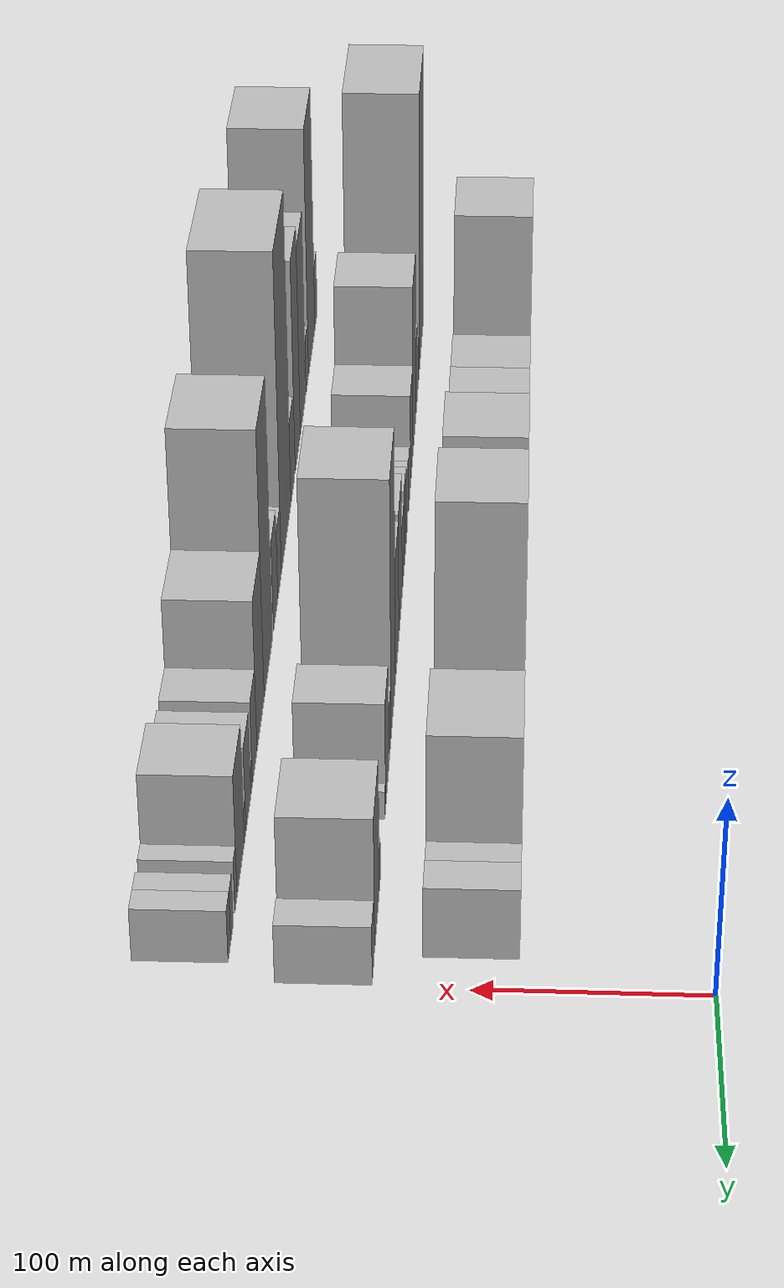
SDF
<sdf version="1.6">
 <world name="default">
  <model name="building_1">
   <static>1</static>
   <pose>100.0000 -554.4719 0 0.000000 0.000000 0.000000</pose>
   <link name="link">
    <pose>0 0 28.50 0 0 0</pose>
    <collision name="collision"><geometry><box><size>40.0000 31.0561 57.0000</size></box></geometry></collision>
    <visual name="visual">
     <cast_shadows>0</cast_shadows>
     <geometry><box><size>40.0000 31.0561 57.0000</size></box></geometry>
     <material>
      <script>
       <uri>model://HANNAS_wall/materials/scripts</uri>
       <uri>model://HANNAS_wall/materials/textures</uri>
       <name>vrc/HANNAS_wall</name>
      </script>
     </material>
    </visual>
   </link>
  </model>
  <model name="building_2">
   <static>1</static>
   <pose>100.0000 -521.5871 0 0.000000 0.000000 0.000000</pose>
   <link name="link">
    <pose>0 0 34.50 0 0 0</pose>
    <collision name="collision"><geometry><box><size>40.0000 34.7136 69.0000</size></box></geometry></collision>
    <visual name="visual">
     <cast_shadows>0</cast_shadows>
     <geometry><box><size>40.0000 34.7136 69.0000</size></box></geometry>
     <material>
      <script>
       <uri>model://HANNAS_wall/materials/scripts</uri>
       <uri>model://HANNAS_wall/materials/textures</uri>
       <name>vrc/HANNAS_wall</name>
      </script>
     </material>
    </visual>
   </link>
  </model>
  <model name="building_3">
   <static>1</static>
   <pose>100.0000 -481.3162 0 0.000000 0.000000 0.000000</pose>
   <link name="link">
    <pose>0 0 61.50 0 0 0</pose>
    <collision name="collision"><geometry><box><size>40.0000 45.8280 123.0000</size></box></geometry></collision>
    <visual name="visual">
     <cast_shadows>0</cast_shadows>
     <geometry><box><size>40.0000 45.8280 123.0000</size></box></geometry>
     <material>
      <script>
       <uri>model://HANNAS_wall/materials/scripts</uri>
       <uri>model://HANNAS_wall/materials/textures</uri>
       <name>vrc/HANNAS_wall</name>
      </script>
     </material>
    </visual>
   </link>
  </model>
  <model name="building_4">
   <static>1</static>
   <pose>100.0000 -452.7569 0 0.000000 0.000000 0.000000</pose>
   <link name="link">
    <pose>0 0 12.00 0 0 0</pose>
    <collision name="collision"><geometry><box><size>40.0000 11.2907 24.0000</size></box></geometry></collision>
    <visual name="visual">
     <cast_shadows>0</cast_shadows>
     <geometry><box><size>40.0000 11.2907 24.0000</size></box></geometry>
     <material>
      <script>
       <uri>model://HANNAS_wall/materials/scripts</uri>
       <uri>model://HANNAS_wall/materials/textures</uri>
       <name>vrc/HANNAS_wall</name>
      </script>
     </material>
    </visual>
   </link>
  </model>
  <model name="building_5">
   <static>1</static>
   <pose>100.0000 -417.3665 0 0.000000 0.000000 0.000000</pose>
   <link name="link">
    <pose>0 0 33.00 0 0 0</pose>
    <collision name="collision"><geometry><box><size>40.0000 39.4901 66.0000</size></box></geometry></collision>
    <visual name="visual">
     <cast_shadows>0</cast_shadows>
     <geometry><box><size>40.0000 39.4901 66.0000</size></box></geometry>
     <material>
      <script>
       <uri>model://HANNAS_wall/materials/scripts</uri>
       <uri>model://HANNAS_wall/materials/textures</uri>
       <name>vrc/HANNAS_wall</name>
      </script>
     </material>
    </visual>
   </link>
  </model>
  <model name="building_6">
   <static>1</static>
   <pose>100.0000 -376.9387 0 0.000000 0.000000 0.000000</pose>
   <link name="link">
    <pose>0 0 34.50 0 0 0</pose>
    <collision name="collision"><geometry><box><size>40.0000 41.3656 69.0000</size></box></geometry></collision>
    <visual name="visual">
     <cast_shadows>0</cast_shadows>
     <geometry><box><size>40.0000 41.3656 69.0000</size></box></geometry>
     <material>
      <script>
       <uri>model://HANNAS_wall/materials/scripts</uri>
       <uri>model://HANNAS_wall/materials/textures</uri>
       <name>vrc/HANNAS_wall</name>
      </script>
     </material>
    </visual>
   </link>
  </model>
  <model name="building_7">
   <static>1</static>
   <pose>100.0000 -328.8341 0 0.000000 0.000000 0.000000</pose>
   <link name="link">
    <pose>0 0 34.50 0 0 0</pose>
    <collision name="collision"><geometry><box><size>40.0000 40.8436 69.0000</size></box></geometry></collision>
    <visual name="visual">
     <cast_shadows>0</cast_shadows>
     <geometry><box><size>40.0000 40.8436 69.0000</size></box></geometry>
     <material>
      <script>
       <uri>model://HANNAS_wall/materials/scripts</uri>
       <uri>model://HANNAS_wall/materials/textures</uri>
       <name>vrc/HANNAS_wall</name>
      </script>
     </material>
    </visual>
   </link>
  </model>
  <model name="building_8">
   <static>1</static>
   <pose>100.0000 -287.5396 0 0.000000 0.000000 0.000000</pose>
   <link name="link">
    <pose>0 0 52.50 0 0 0</pose>
    <collision name="collision"><geometry><box><size>40.0000 41.7453 105.0000</size></box></geometry></collision>
    <visual name="visual">
     <cast_shadows>0</cast_shadows>
     <geometry><box><size>40.0000 41.7453 105.0000</size></box></geometry>
     <material>
      <script>
       <uri>model://HANNAS_wall/materials/scripts</uri>
       <uri>model://HANNAS_wall/materials/textures</uri>
       <name>vrc/HANNAS_wall</name>
      </script>
     </material>
    </visual>
   </link>
  </model>
  <model name="building_9">
   <static>1</static>
   <pose>100.0000 -248.6137 0 0.000000 0.000000 0.000000</pose>
   <link name="link">
    <pose>0 0 33.00 0 0 0</pose>
    <collision name="collision"><geometry><box><size>40.0000 36.1065 66.0000</size></box></geometry></collision>
    <visual name="visual">
     <cast_shadows>0</cast_shadows>
     <geometry><box><size>40.0000 36.1065 66.0000</size></box></geometry>
     <material>
      <script>
       <uri>model://HANNAS_wall/materials/scripts</uri>
       <uri>model://HANNAS_wall/materials/textures</uri>
       <name>vrc/HANNAS_wall</name>
      </script>
     </material>
    </visual>
   </link>
  </model>
  <model name="building_10">
   <static>1</static>
   <pose>100.0000 -215.2584 0 0.000000 0.000000 0.000000</pose>
   <link name="link">
    <pose>0 0 18.00 0 0 0</pose>
    <collision name="collision"><geometry><box><size>40.0000 18.6041 36.0000</size></box></geometry></collision>
    <visual name="visual">
     <cast_shadows>0</cast_shadows>
     <geometry><box><size>40.0000 18.6041 36.0000</size></box></geometry>
     <material>
      <script>
       <uri>model://HANNAS_wall/materials/scripts</uri>
       <uri>model://HANNAS_wall/materials/textures</uri>
       <name>vrc/HANNAS_wall</name>
      </script>
     </material>
    </visual>
   </link>
  </model>
  <model name="building_11">
   <static>1</static>
   <pose>100.0000 -183.0226 0 0.000000 0.000000 0.000000</pose>
   <link name="link">
    <pose>0 0 67.50 0 0 0</pose>
    <collision name="collision"><geometry><box><size>40.0000 45.8675 135.0000</size></box></geometry></collision>
    <visual name="visual">
     <cast_shadows>0</cast_shadows>
     <geometry><box><size>40.0000 45.8675 135.0000</size></box></geometry>
     <material>
      <script>
       <uri>model://HANNAS_wall/materials/scripts</uri>
       <uri>model://HANNAS_wall/materials/textures</uri>
       <name>vrc/HANNAS_wall</name>
      </script>
     </material>
    </visual>
   </link>
  </model>
  <model name="building_12">
   <static>1</static>
   <pose>100.0000 -145.7582 0 0.000000 0.000000 0.000000</pose>
   <link name="link">
    <pose>0 0 9.00 0 0 0</pose>
    <collision name="collision"><geometry><box><size>40.0000 8.6613 18.0000</size></box></geometry></collision>
    <visual name="visual">
     <cast_shadows>0</cast_shadows>
     <geometry><box><size>40.0000 8.6613 18.0000</size></box></geometry>
     <material>
      <script>
       <uri>model://HANNAS_wall/materials/scripts</uri>
       <uri>model://HANNAS_wall/materials/textures</uri>
       <name>vrc/HANNAS_wall</name>
      </script>
     </material>
    </visual>
   </link>
  </model>
  <model name="building_13">
   <static>1</static>
   <pose>100.0000 -133.9505 0 0.000000 0.000000 0.000000</pose>
   <link name="link">
    <pose>0 0 9.00 0 0 0</pose>
    <collision name="collision"><geometry><box><size>40.0000 8.9541 18.0000</size></box></geometry></collision>
    <visual name="visual">
     <cast_shadows>0</cast_shadows>
     <geometry><box><size>40.0000 8.9541 18.0000</size></box></geometry>
     <material>
      <script>
       <uri>model://HANNAS_wall/materials/scripts</uri>
       <uri>model://HANNAS_wall/materials/textures</uri>
       <name>vrc/HANNAS_wall</name>
      </script>
     </material>
    </visual>
   </link>
  </model>
  <model name="building_14">
   <static>1</static>
   <pose>100.0000 -112.2183 0 0.000000 0.000000 0.000000</pose>
   <link name="link">
    <pose>0 0 15.00 0 0 0</pose>
    <collision name="collision"><geometry><box><size>40.0000 16.5102 30.0000</size></box></geometry></collision>
    <visual name="visual">
     <cast_shadows>0</cast_shadows>
     <geometry><box><size>40.0000 16.5102 30.0000</size></box></geometry>
     <material>
      <script>
       <uri>model://HANNAS_wall/materials/scripts</uri>
       <uri>model://HANNAS_wall/materials/textures</uri>
       <name>vrc/HANNAS_wall</name>
      </script>
     </material>
    </visual>
   </link>
  </model>
  <model name="building_15">
   <static>1</static>
   <pose>100.0000 -79.7045 0 0.000000 0.000000 0.000000</pose>
   <link name="link">
    <pose>0 0 43.50 0 0 0</pose>
    <collision name="collision"><geometry><box><size>40.0000 48.5175 87.0000</size></box></geometry></collision>
    <visual name="visual">
     <cast_shadows>0</cast_shadows>
     <geometry><box><size>40.0000 48.5175 87.0000</size></box></geometry>
     <material>
      <script>
       <uri>model://HANNAS_wall/materials/scripts</uri>
       <uri>model://HANNAS_wall/materials/textures</uri>
       <name>vrc/HANNAS_wall</name>
      </script>
     </material>
    </visual>
   </link>
  </model>
  <model name="building_16">
   <static>1</static>
   <pose>100.0000 -47.1491 0 0.000000 0.000000 0.000000</pose>
   <link name="link">
    <pose>0 0 16.50 0 0 0</pose>
    <collision name="collision"><geometry><box><size>40.0000 16.5933 33.0000</size></box></geometry></collision>
    <visual name="visual">
     <cast_shadows>0</cast_shadows>
     <geometry><box><size>40.0000 16.5933 33.0000</size></box></geometry>
     <material>
      <script>
       <uri>model://HANNAS_wall/materials/scripts</uri>
       <uri>model://HANNAS_wall/materials/textures</uri>
       <name>vrc/HANNAS_wall</name>
      </script>
     </material>
    </visual>
   </link>
  </model>
  <model name="building_17">
   <static>1</static>
   <pose>100.0000 -29.5650 0 0.000000 0.000000 0.000000</pose>
   <link name="link">
    <pose>0 0 18.00 0 0 0</pose>
    <collision name="collision"><geometry><box><size>40.0000 18.5749 36.0000</size></box></geometry></collision>
    <visual name="visual">
     <cast_shadows>0</cast_shadows>
     <geometry><box><size>40.0000 18.5749 36.0000</size></box></geometry>
     <material>
      <script>
       <uri>model://HANNAS_wall/materials/scripts</uri>
       <uri>model://HANNAS_wall/materials/textures</uri>
       <name>vrc/HANNAS_wall</name>
      </script>
     </material>
    </visual>
   </link>
  </model>
  <model name="building_35">
   <static>1</static>
   <pose>160.0000 -545.3667 0 0.000000 0.000000 0.000000</pose>
   <link name="link">
    <pose>0 0 82.50 0 0 0</pose>
    <collision name="collision"><geometry><box><size>40.0000 63.2666 165.0000</size></box></geometry></collision>
    <visual name="visual">
     <cast_shadows>0</cast_shadows>
     <geometry><box><size>40.0000 63.2666 165.0000</size></box></geometry>
     <material>
      <script>
       <uri>model://HANNAS_wall/materials/scripts</uri>
       <uri>model://HANNAS_wall/materials/textures</uri>
       <name>vrc/HANNAS_wall</name>
      </script>
     </material>
    </visual>
   </link>
  </model>
  <model name="building_36">
   <static>1</static>
   <pose>160.0000 -501.1986 0 0.000000 0.000000 0.000000</pose>
   <link name="link">
    <pose>0 0 13.50 0 0 0</pose>
    <collision name="collision"><geometry><box><size>40.0000 11.0695 27.0000</size></box></geometry></collision>
    <visual name="visual">
     <cast_shadows>0</cast_shadows>
     <geometry><box><size>40.0000 11.0695 27.0000</size></box></geometry>
     <material>
      <script>
       <uri>model://HANNAS_wall/materials/scripts</uri>
       <uri>model://HANNAS_wall/materials/textures</uri>
       <name>vrc/HANNAS_wall</name>
      </script>
     </material>
    </visual>
   </link>
  </model>
  <model name="building_37">
   <static>1</static>
   <pose>160.0000 -474.6962 0 0.000000 0.000000 0.000000</pose>
   <link name="link">
    <pose>0 0 22.50 0 0 0</pose>
    <collision name="collision"><geometry><box><size>40.0000 23.9354 45.0000</size></box></geometry></collision>
    <visual name="visual">
     <cast_shadows>0</cast_shadows>
     <geometry><box><size>40.0000 23.9354 45.0000</size></box></geometry>
     <material>
      <script>
       <uri>model://HANNAS_wall/materials/scripts</uri>
       <uri>model://HANNAS_wall/materials/textures</uri>
       <name>vrc/HANNAS_wall</name>
      </script>
     </material>
    </visual>
   </link>
  </model>
  <model name="building_38">
   <static>1</static>
   <pose>160.0000 -443.7547 0 0.000000 0.000000 0.000000</pose>
   <link name="link">
    <pose>0 0 49.50 0 0 0</pose>
    <collision name="collision"><geometry><box><size>40.0000 37.9476 99.0000</size></box></geometry></collision>
    <visual name="visual">
     <cast_shadows>0</cast_shadows>
     <geometry><box><size>40.0000 37.9476 99.0000</size></box></geometry>
     <material>
      <script>
       <uri>model://HANNAS_wall/materials/scripts</uri>
       <uri>model://HANNAS_wall/materials/textures</uri>
       <name>vrc/HANNAS_wall</name>
      </script>
     </material>
    </visual>
   </link>
  </model>
  <model name="building_39">
   <static>1</static>
   <pose>160.0000 -408.8667 0 0.000000 0.000000 0.000000</pose>
   <link name="link">
    <pose>0 0 27.00 0 0 0</pose>
    <collision name="collision"><geometry><box><size>40.0000 31.8284 54.0000</size></box></geometry></collision>
    <visual name="visual">
     <cast_shadows>0</cast_shadows>
     <geometry><box><size>40.0000 31.8284 54.0000</size></box></geometry>
     <material>
      <script>
       <uri>model://HANNAS_wall/materials/scripts</uri>
       <uri>model://HANNAS_wall/materials/textures</uri>
       <name>vrc/HANNAS_wall</name>
      </script>
     </material>
    </visual>
   </link>
  </model>
  <model name="building_40">
   <static>1</static>
   <pose>160.0000 -376.1975 0 0.000000 0.000000 0.000000</pose>
   <link name="link">
    <pose>0 0 15.00 0 0 0</pose>
    <collision name="collision"><geometry><box><size>40.0000 15.5101 30.0000</size></box></geometry></collision>
    <visual name="visual">
     <cast_shadows>0</cast_shadows>
     <geometry><box><size>40.0000 15.5101 30.0000</size></box></geometry>
     <material>
      <script>
       <uri>model://HANNAS_wall/materials/scripts</uri>
       <uri>model://HANNAS_wall/materials/textures</uri>
       <name>vrc/HANNAS_wall</name>
      </script>
     </material>
    </visual>
   </link>
  </model>
  <model name="building_41">
   <static>1</static>
   <pose>160.0000 -349.1722 0 0.000000 0.000000 0.000000</pose>
   <link name="link">
    <pose>0 0 18.00 0 0 0</pose>
    <collision name="collision"><geometry><box><size>40.0000 20.5405 36.0000</size></box></geometry></collision>
    <visual name="visual">
     <cast_shadows>0</cast_shadows>
     <geometry><box><size>40.0000 20.5405 36.0000</size></box></geometry>
     <material>
      <script>
       <uri>model://HANNAS_wall/materials/scripts</uri>
       <uri>model://HANNAS_wall/materials/textures</uri>
       <name>vrc/HANNAS_wall</name>
      </script>
     </material>
    </visual>
   </link>
  </model>
  <model name="building_42">
   <static>1</static>
   <pose>160.0000 -326.9622 0 0.000000 0.000000 0.000000</pose>
   <link name="link">
    <pose>0 0 22.50 0 0 0</pose>
    <collision name="collision"><geometry><box><size>40.0000 23.8795 45.0000</size></box></geometry></collision>
    <visual name="visual">
     <cast_shadows>0</cast_shadows>
     <geometry><box><size>40.0000 23.8795 45.0000</size></box></geometry>
     <material>
      <script>
       <uri>model://HANNAS_wall/materials/scripts</uri>
       <uri>model://HANNAS_wall/materials/textures</uri>
       <name>vrc/HANNAS_wall</name>
      </script>
     </material>
    </visual>
   </link>
  </model>
  <model name="building_43">
   <static>1</static>
   <pose>160.0000 -303.6329 0 0.000000 0.000000 0.000000</pose>
   <link name="link">
    <pose>0 0 19.50 0 0 0</pose>
    <collision name="collision"><geometry><box><size>40.0000 22.7790 39.0000</size></box></geometry></collision>
    <visual name="visual">
     <cast_shadows>0</cast_shadows>
     <geometry><box><size>40.0000 22.7790 39.0000</size></box></geometry>
     <material>
      <script>
       <uri>model://HANNAS_wall/materials/scripts</uri>
       <uri>model://HANNAS_wall/materials/textures</uri>
       <name>vrc/HANNAS_wall</name>
      </script>
     </material>
    </visual>
   </link>
  </model>
  <model name="building_44">
   <static>1</static>
   <pose>160.0000 -273.3771 0 0.000000 0.000000 0.000000</pose>
   <link name="link">
    <pose>0 0 34.50 0 0 0</pose>
    <collision name="collision"><geometry><box><size>40.0000 37.7326 69.0000</size></box></geometry></collision>
    <visual name="visual">
     <cast_shadows>0</cast_shadows>
     <geometry><box><size>40.0000 37.7326 69.0000</size></box></geometry>
     <material>
      <script>
       <uri>model://HANNAS_wall/materials/scripts</uri>
       <uri>model://HANNAS_wall/materials/textures</uri>
       <name>vrc/HANNAS_wall</name>
      </script>
     </material>
    </visual>
   </link>
  </model>
  <model name="building_45">
   <static>1</static>
   <pose>160.0000 -235.8135 0 0.000000 0.000000 0.000000</pose>
   <link name="link">
    <pose>0 0 33.00 0 0 0</pose>
    <collision name="collision"><geometry><box><size>40.0000 37.3946 66.0000</size></box></geometry></collision>
    <visual name="visual">
     <cast_shadows>0</cast_shadows>
     <geometry><box><size>40.0000 37.3946 66.0000</size></box></geometry>
     <material>
      <script>
       <uri>model://HANNAS_wall/materials/scripts</uri>
       <uri>model://HANNAS_wall/materials/textures</uri>
       <name>vrc/HANNAS_wall</name>
      </script>
     </material>
    </visual>
   </link>
  </model>
  <model name="building_46">
   <static>1</static>
   <pose>160.0000 -194.6921 0 0.000000 0.000000 0.000000</pose>
   <link name="link">
    <pose>0 0 69.00 0 0 0</pose>
    <collision name="collision"><geometry><box><size>40.0000 44.8482 138.0000</size></box></geometry></collision>
    <visual name="visual">
     <cast_shadows>0</cast_shadows>
     <geometry><box><size>40.0000 44.8482 138.0000</size></box></geometry>
     <material>
      <script>
       <uri>model://HANNAS_wall/materials/scripts</uri>
       <uri>model://HANNAS_wall/materials/textures</uri>
       <name>vrc/HANNAS_wall</name>
      </script>
     </material>
    </visual>
   </link>
  </model>
  <model name="building_47">
   <static>1</static>
   <pose>160.0000 -164.5924 0 0.000000 0.000000 0.000000</pose>
   <link name="link">
    <pose>0 0 15.00 0 0 0</pose>
    <collision name="collision"><geometry><box><size>40.0000 15.3514 30.0000</size></box></geometry></collision>
    <visual name="visual">
     <cast_shadows>0</cast_shadows>
     <geometry><box><size>40.0000 15.3514 30.0000</size></box></geometry>
     <material>
      <script>
       <uri>model://HANNAS_wall/materials/scripts</uri>
       <uri>model://HANNAS_wall/materials/textures</uri>
       <name>vrc/HANNAS_wall</name>
      </script>
     </material>
    </visual>
   </link>
  </model>
  <model name="building_48">
   <static>1</static>
   <pose>160.0000 -134.1762 0 0.000000 0.000000 0.000000</pose>
   <link name="link">
    <pose>0 0 28.50 0 0 0</pose>
    <collision name="collision"><geometry><box><size>40.0000 29.4811 57.0000</size></box></geometry></collision>
    <visual name="visual">
     <cast_shadows>0</cast_shadows>
     <geometry><box><size>40.0000 29.4811 57.0000</size></box></geometry>
     <material>
      <script>
       <uri>model://HANNAS_wall/materials/scripts</uri>
       <uri>model://HANNAS_wall/materials/textures</uri>
       <name>vrc/HANNAS_wall</name>
      </script>
     </material>
    </visual>
   </link>
  </model>
  <model name="building_49">
   <static>1</static>
   <pose>160.0000 -116.2021 0 0.000000 0.000000 0.000000</pose>
   <link name="link">
    <pose>0 0 7.50 0 0 0</pose>
    <collision name="collision"><geometry><box><size>40.0000 6.4671 15.0000</size></box></geometry></collision>
    <visual name="visual">
     <cast_shadows>0</cast_shadows>
     <geometry><box><size>40.0000 6.4671 15.0000</size></box></geometry>
     <material>
      <script>
       <uri>model://HANNAS_wall/materials/scripts</uri>
       <uri>model://HANNAS_wall/materials/textures</uri>
       <name>vrc/HANNAS_wall</name>
      </script>
     </material>
    </visual>
   </link>
  </model>
  <model name="building_50">
   <static>1</static>
   <pose>160.0000 -67.8187 0 0.000000 0.000000 0.000000</pose>
   <link name="link">
    <pose>0 0 10.50 0 0 0</pose>
    <collision name="collision"><geometry><box><size>40.0000 10.0999 21.0000</size></box></geometry></collision>
    <visual name="visual">
     <cast_shadows>0</cast_shadows>
     <geometry><box><size>40.0000 10.0999 21.0000</size></box></geometry>
     <material>
      <script>
       <uri>model://HANNAS_wall/materials/scripts</uri>
       <uri>model://HANNAS_wall/materials/textures</uri>
       <name>vrc/HANNAS_wall</name>
      </script>
     </material>
    </visual>
   </link>
  </model>
  <model name="building_51">
   <static>1</static>
   <pose>160.0000 -42.4453 0 0.000000 0.000000 0.000000</pose>
   <link name="link">
    <pose>0 0 34.50 0 0 0</pose>
    <collision name="collision"><geometry><box><size>40.0000 40.6470 69.0000</size></box></geometry></collision>
    <visual name="visual">
     <cast_shadows>0</cast_shadows>
     <geometry><box><size>40.0000 40.6470 69.0000</size></box></geometry>
     <material>
      <script>
       <uri>model://HANNAS_wall/materials/scripts</uri>
       <uri>model://HANNAS_wall/materials/textures</uri>
       <name>vrc/HANNAS_wall</name>
      </script>
     </material>
    </visual>
   </link>
  </model>
  <model name="building_52">
   <static>1</static>
   <pose>160.0000 -10.4116 0 0.000000 0.000000 0.000000</pose>
   <link name="link">
    <pose>0 0 15.00 0 0 0</pose>
    <collision name="collision"><geometry><box><size>40.0000 17.4205 30.0000</size></box></geometry></collision>
    <visual name="visual">
     <cast_shadows>0</cast_shadows>
     <geometry><box><size>40.0000 17.4205 30.0000</size></box></geometry>
     <material>
      <script>
       <uri>model://HANNAS_wall/materials/scripts</uri>
       <uri>model://HANNAS_wall/materials/textures</uri>
       <name>vrc/HANNAS_wall</name>
      </script>
     </material>
    </visual>
   </link>
  </model>
  <model name="building_72">
   <static>1</static>
   <pose>220.0000 -570.1833 0 0.000000 0.000000 0.000000</pose>
   <link name="link">
    <pose>0 0 19.50 0 0 0</pose>
    <collision name="collision"><geometry><box><size>40.0000 19.6335 39.0000</size></box></geometry></collision>
    <visual name="visual">
     <cast_shadows>0</cast_shadows>
     <geometry><box><size>40.0000 19.6335 39.0000</size></box></geometry>
     <material>
      <script>
       <uri>model://HANNAS_wall/materials/scripts</uri>
       <uri>model://HANNAS_wall/materials/textures</uri>
       <name>vrc/HANNAS_wall</name>
      </script>
     </material>
    </visual>
   </link>
  </model>
  <model name="building_73">
   <static>1</static>
   <pose>220.0000 -533.8666 0 0.000000 0.000000 0.000000</pose>
   <link name="link">
    <pose>0 0 73.50 0 0 0</pose>
    <collision name="collision"><geometry><box><size>40.0000 52.9999 147.0000</size></box></geometry></collision>
    <visual name="visual">
     <cast_shadows>0</cast_shadows>
     <geometry><box><size>40.0000 52.9999 147.0000</size></box></geometry>
     <material>
      <script>
       <uri>model://HANNAS_wall/materials/scripts</uri>
       <uri>model://HANNAS_wall/materials/textures</uri>
       <name>vrc/HANNAS_wall</name>
      </script>
     </material>
    </visual>
   </link>
  </model>
  <model name="building_74">
   <static>1</static>
   <pose>220.0000 -495.6966 0 0.000000 0.000000 0.000000</pose>
   <link name="link">
    <pose>0 0 16.50 0 0 0</pose>
    <collision name="collision"><geometry><box><size>40.0000 17.3401 33.0000</size></box></geometry></collision>
    <visual name="visual">
     <cast_shadows>0</cast_shadows>
     <geometry><box><size>40.0000 17.3401 33.0000</size></box></geometry>
     <material>
      <script>
       <uri>model://HANNAS_wall/materials/scripts</uri>
       <uri>model://HANNAS_wall/materials/textures</uri>
       <name>vrc/HANNAS_wall</name>
      </script>
     </material>
    </visual>
   </link>
  </model>
  <model name="building_75">
   <static>1</static>
   <pose>220.0000 -463.6518 0 0.000000 0.000000 0.000000</pose>
   <link name="link">
    <pose>0 0 55.50 0 0 0</pose>
    <collision name="collision"><geometry><box><size>40.0000 40.7495 111.0000</size></box></geometry></collision>
    <visual name="visual">
     <cast_shadows>0</cast_shadows>
     <geometry><box><size>40.0000 40.7495 111.0000</size></box></geometry>
     <material>
      <script>
       <uri>model://HANNAS_wall/materials/scripts</uri>
       <uri>model://HANNAS_wall/materials/textures</uri>
       <name>vrc/HANNAS_wall</name>
      </script>
     </material>
    </visual>
   </link>
  </model>
  <model name="building_76">
   <static>1</static>
   <pose>220.0000 -424.0675 0 0.000000 0.000000 0.000000</pose>
   <link name="link">
    <pose>0 0 61.50 0 0 0</pose>
    <collision name="collision"><geometry><box><size>40.0000 38.4192 123.0000</size></box></geometry></collision>
    <visual name="visual">
     <cast_shadows>0</cast_shadows>
     <geometry><box><size>40.0000 38.4192 123.0000</size></box></geometry>
     <material>
      <script>
       <uri>model://HANNAS_wall/materials/scripts</uri>
       <uri>model://HANNAS_wall/materials/textures</uri>
       <name>vrc/HANNAS_wall</name>
      </script>
     </material>
    </visual>
   </link>
  </model>
  <model name="building_77">
   <static>1</static>
   <pose>220.0000 -387.4834 0 0.000000 0.000000 0.000000</pose>
   <link name="link">
    <pose>0 0 24.00 0 0 0</pose>
    <collision name="collision"><geometry><box><size>40.0000 26.7490 48.0000</size></box></geometry></collision>
    <visual name="visual">
     <cast_shadows>0</cast_shadows>
     <geometry><box><size>40.0000 26.7490 48.0000</size></box></geometry>
     <material>
      <script>
       <uri>model://HANNAS_wall/materials/scripts</uri>
       <uri>model://HANNAS_wall/materials/textures</uri>
       <name>vrc/HANNAS_wall</name>
      </script>
     </material>
    </visual>
   </link>
  </model>
  <model name="building_78">
   <static>1</static>
   <pose>220.0000 -341.6166 0 0.000000 0.000000 0.000000</pose>
   <link name="link">
    <pose>0 0 88.50 0 0 0</pose>
    <collision name="collision"><geometry><box><size>40.0000 64.9846 177.0000</size></box></geometry></collision>
    <visual name="visual">
     <cast_shadows>0</cast_shadows>
     <geometry><box><size>40.0000 64.9846 177.0000</size></box></geometry>
     <material>
      <script>
       <uri>model://HANNAS_wall/materials/scripts</uri>
       <uri>model://HANNAS_wall/materials/textures</uri>
       <name>vrc/HANNAS_wall</name>
      </script>
     </material>
    </visual>
   </link>
  </model>
  <model name="building_79">
   <static>1</static>
   <pose>220.0000 -297.5346 0 0.000000 0.000000 0.000000</pose>
   <link name="link">
    <pose>0 0 19.50 0 0 0</pose>
    <collision name="collision"><geometry><box><size>40.0000 23.1795 39.0000</size></box></geometry></collision>
    <visual name="visual">
     <cast_shadows>0</cast_shadows>
     <geometry><box><size>40.0000 23.1795 39.0000</size></box></geometry>
     <material>
      <script>
       <uri>model://HANNAS_wall/materials/scripts</uri>
       <uri>model://HANNAS_wall/materials/textures</uri>
       <name>vrc/HANNAS_wall</name>
      </script>
     </material>
    </visual>
   </link>
  </model>
  <model name="building_80">
   <static>1</static>
   <pose>220.0000 -272.1671 0 0.000000 0.000000 0.000000</pose>
   <link name="link">
    <pose>0 0 25.50 0 0 0</pose>
    <collision name="collision"><geometry><box><size>40.0000 27.5554 51.0000</size></box></geometry></collision>
    <visual name="visual">
     <cast_shadows>0</cast_shadows>
     <geometry><box><size>40.0000 27.5554 51.0000</size></box></geometry>
     <material>
      <script>
       <uri>model://HANNAS_wall/materials/scripts</uri>
       <uri>model://HANNAS_wall/materials/textures</uri>
       <name>vrc/HANNAS_wall</name>
      </script>
     </material>
    </visual>
   </link>
  </model>
  <model name="building_81">
   <static>1</static>
   <pose>220.0000 -226.8454 0 0.000000 0.000000 0.000000</pose>
   <link name="link">
    <pose>0 0 72.00 0 0 0</pose>
    <collision name="collision"><geometry><box><size>40.0000 49.0881 144.0000</size></box></geometry></collision>
    <visual name="visual">
     <cast_shadows>0</cast_shadows>
     <geometry><box><size>40.0000 49.0881 144.0000</size></box></geometry>
     <material>
      <script>
       <uri>model://HANNAS_wall/materials/scripts</uri>
       <uri>model://HANNAS_wall/materials/textures</uri>
       <name>vrc/HANNAS_wall</name>
      </script>
     </material>
    </visual>
   </link>
  </model>
  <model name="building_82">
   <static>1</static>
   <pose>220.0000 -181.8180 0 0.000000 0.000000 0.000000</pose>
   <link name="link">
    <pose>0 0 40.50 0 0 0</pose>
    <collision name="collision"><geometry><box><size>40.0000 40.9665 81.0000</size></box></geometry></collision>
    <visual name="visual">
     <cast_shadows>0</cast_shadows>
     <geometry><box><size>40.0000 40.9665 81.0000</size></box></geometry>
     <material>
      <script>
       <uri>model://HANNAS_wall/materials/scripts</uri>
       <uri>model://HANNAS_wall/materials/textures</uri>
       <name>vrc/HANNAS_wall</name>
      </script>
     </material>
    </visual>
   </link>
  </model>
  <model name="building_83">
   <static>1</static>
   <pose>220.0000 -148.5004 0 0.000000 0.000000 0.000000</pose>
   <link name="link">
    <pose>0 0 22.50 0 0 0</pose>
    <collision name="collision"><geometry><box><size>40.0000 25.6688 45.0000</size></box></geometry></collision>
    <visual name="visual">
     <cast_shadows>0</cast_shadows>
     <geometry><box><size>40.0000 25.6688 45.0000</size></box></geometry>
     <material>
      <script>
       <uri>model://HANNAS_wall/materials/scripts</uri>
       <uri>model://HANNAS_wall/materials/textures</uri>
       <name>vrc/HANNAS_wall</name>
      </script>
     </material>
    </visual>
   </link>
  </model>
  <model name="building_84">
   <static>1</static>
   <pose>220.0000 -131.9876 0 0.000000 0.000000 0.000000</pose>
   <link name="link">
    <pose>0 0 7.50 0 0 0</pose>
    <collision name="collision"><geometry><box><size>40.0000 7.3566 15.0000</size></box></geometry></collision>
    <visual name="visual">
     <cast_shadows>0</cast_shadows>
     <geometry><box><size>40.0000 7.3566 15.0000</size></box></geometry>
     <material>
      <script>
       <uri>model://HANNAS_wall/materials/scripts</uri>
       <uri>model://HANNAS_wall/materials/textures</uri>
       <name>vrc/HANNAS_wall</name>
      </script>
     </material>
    </visual>
   </link>
  </model>
  <model name="building_85">
   <static>1</static>
   <pose>220.0000 -115.0696 0 0.000000 0.000000 0.000000</pose>
   <link name="link">
    <pose>0 0 22.50 0 0 0</pose>
    <collision name="collision"><geometry><box><size>40.0000 26.4795 45.0000</size></box></geometry></collision>
    <visual name="visual">
     <cast_shadows>0</cast_shadows>
     <geometry><box><size>40.0000 26.4795 45.0000</size></box></geometry>
     <material>
      <script>
       <uri>model://HANNAS_wall/materials/scripts</uri>
       <uri>model://HANNAS_wall/materials/textures</uri>
       <name>vrc/HANNAS_wall</name>
      </script>
     </material>
    </visual>
   </link>
  </model>
  <model name="building_86">
   <static>1</static>
   <pose>220.0000 -97.8609 0 0.000000 0.000000 0.000000</pose>
   <link name="link">
    <pose>0 0 9.00 0 0 0</pose>
    <collision name="collision"><geometry><box><size>40.0000 7.9379 18.0000</size></box></geometry></collision>
    <visual name="visual">
     <cast_shadows>0</cast_shadows>
     <geometry><box><size>40.0000 7.9379 18.0000</size></box></geometry>
     <material>
      <script>
       <uri>model://HANNAS_wall/materials/scripts</uri>
       <uri>model://HANNAS_wall/materials/textures</uri>
       <name>vrc/HANNAS_wall</name>
      </script>
     </material>
    </visual>
   </link>
  </model>
  <model name="building_87">
   <static>1</static>
   <pose>220.0000 -75.4527 0 0.000000 0.000000 0.000000</pose>
   <link name="link">
    <pose>0 0 31.50 0 0 0</pose>
    <collision name="collision"><geometry><box><size>40.0000 36.8784 63.0000</size></box></geometry></collision>
    <visual name="visual">
     <cast_shadows>0</cast_shadows>
     <geometry><box><size>40.0000 36.8784 63.0000</size></box></geometry>
     <material>
      <script>
       <uri>model://HANNAS_wall/materials/scripts</uri>
       <uri>model://HANNAS_wall/materials/textures</uri>
       <name>vrc/HANNAS_wall</name>
      </script>
     </material>
    </visual>
   </link>
  </model>
  <model name="building_88">
   <static>1</static>
   <pose>220.0000 -51.5800 0 0.000000 0.000000 0.000000</pose>
   <link name="link">
    <pose>0 0 13.50 0 0 0</pose>
    <collision name="collision"><geometry><box><size>40.0000 10.8671 27.0000</size></box></geometry></collision>
    <visual name="visual">
     <cast_shadows>0</cast_shadows>
     <geometry><box><size>40.0000 10.8671 27.0000</size></box></geometry>
     <material>
      <script>
       <uri>model://HANNAS_wall/materials/scripts</uri>
       <uri>model://HANNAS_wall/materials/textures</uri>
       <name>vrc/HANNAS_wall</name>
      </script>
     </material>
    </visual>
   </link>
  </model>
  <model name="building_89">
   <static>1</static>
   <pose>220.0000 -32.2742 0 0.000000 0.000000 0.000000</pose>
   <link name="link">
    <pose>0 0 13.50 0 0 0</pose>
    <collision name="collision"><geometry><box><size>40.0000 11.7443 27.0000</size></box></geometry></collision>
    <visual name="visual">
     <cast_shadows>0</cast_shadows>
     <geometry><box><size>40.0000 11.7443 27.0000</size></box></geometry>
     <material>
      <script>
       <uri>model://HANNAS_wall/materials/scripts</uri>
       <uri>model://HANNAS_wall/materials/textures</uri>
       <name>vrc/HANNAS_wall</name>
      </script>
     </material>
    </visual>
   </link>
  </model>
  <model name="building_90">
   <static>1</static>
   <pose>220.0000 -19.9799 0 0.000000 0.000000 0.000000</pose>
   <link name="link">
    <pose>0 0 13.50 0 0 0</pose>
    <collision name="collision"><geometry><box><size>40.0000 12.8443 27.0000</size></box></geometry></collision>
    <visual name="visual">
     <cast_shadows>0</cast_shadows>
     <geometry><box><size>40.0000 12.8443 27.0000</size></box></geometry>
     <material>
      <script>
       <uri>model://HANNAS_wall/materials/scripts</uri>
       <uri>model://HANNAS_wall/materials/textures</uri>
       <name>vrc/HANNAS_wall</name>
      </script>
     </material>
    </visual>
   </link>
  </model>
 </world>
</sdf>
